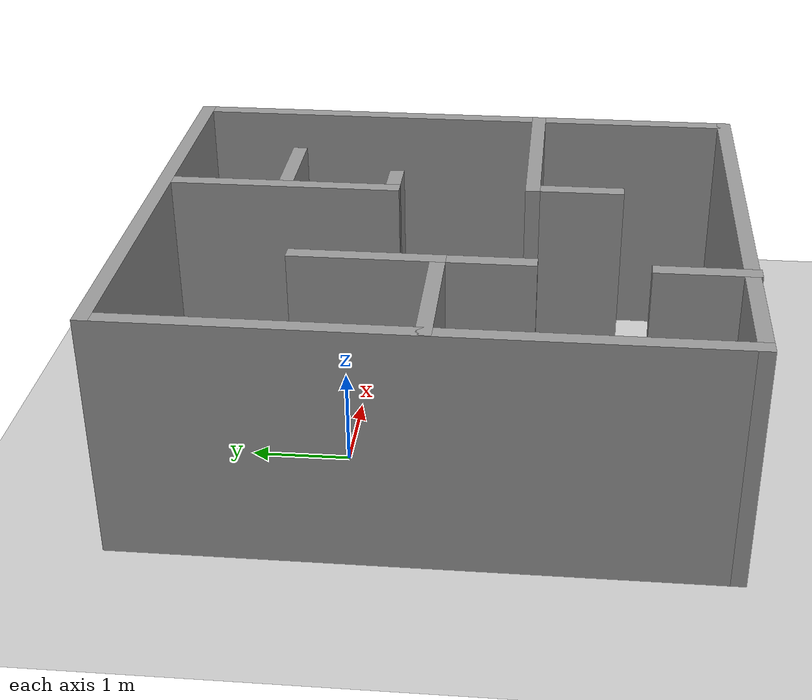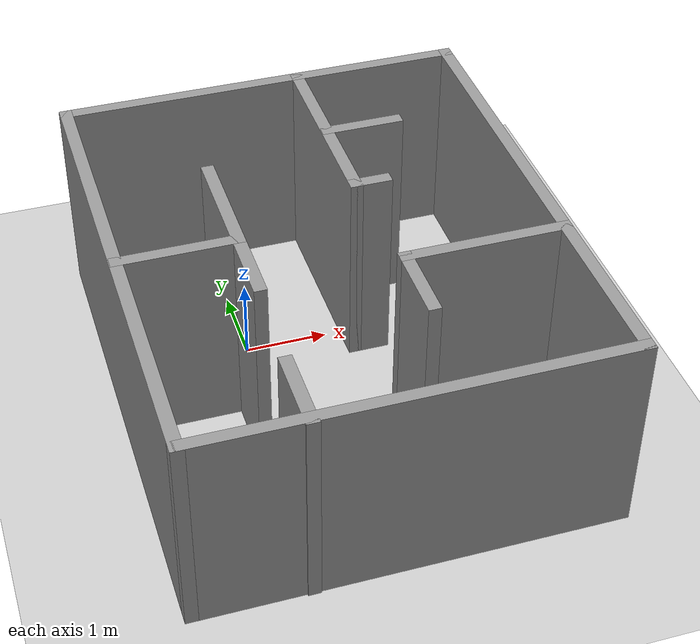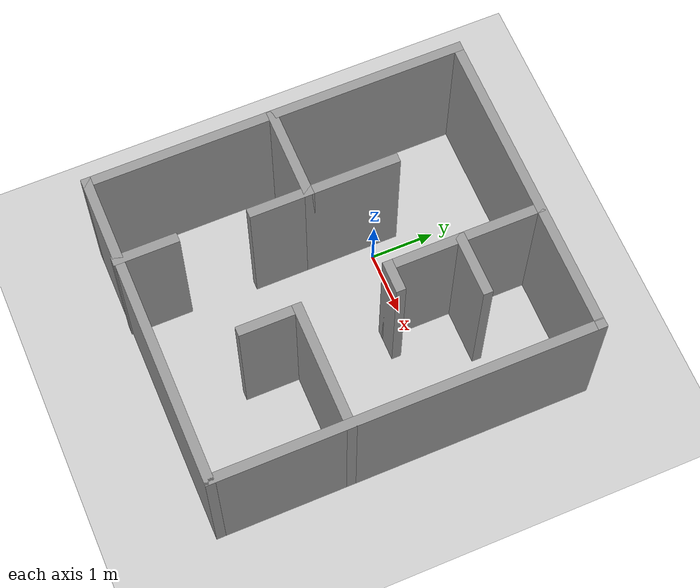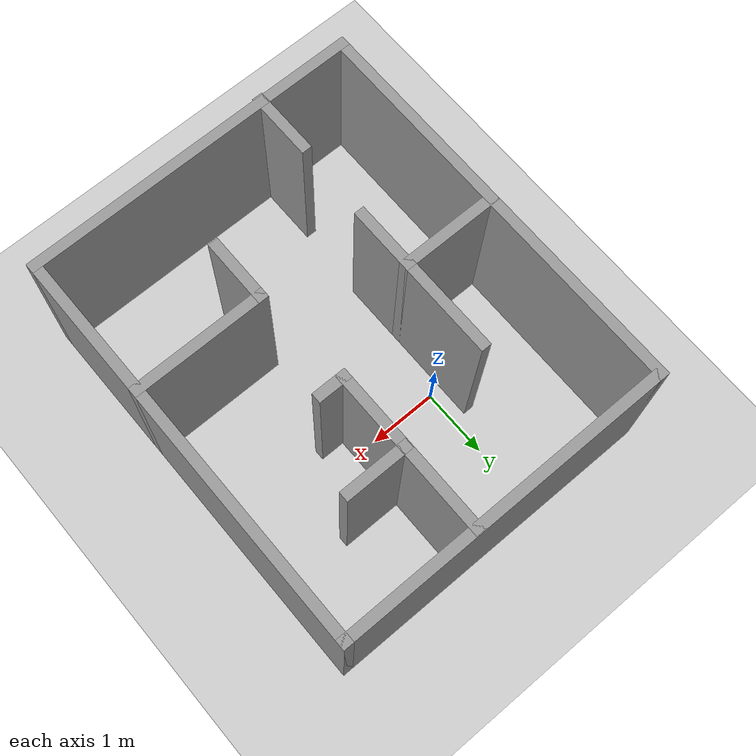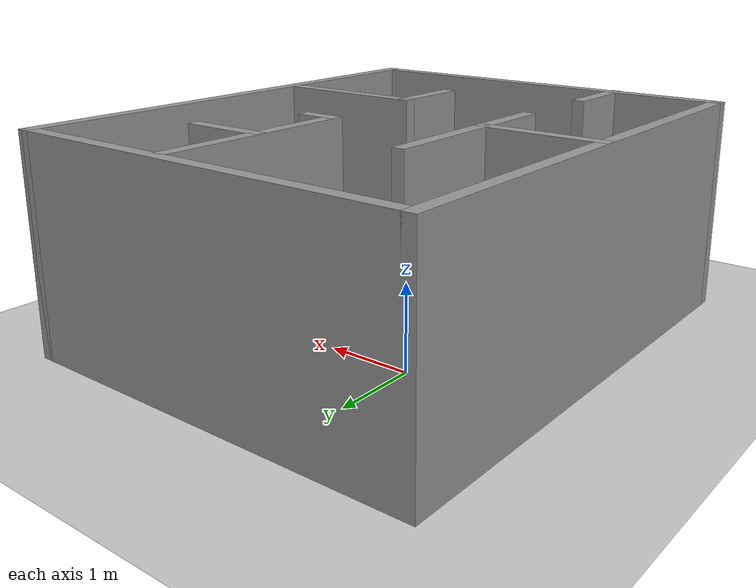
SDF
<sdf version="1.6">
 <world name="default">
  <light name="sun" type="directional">
   <pose>0 0 10 0 -0 0</pose>
   <diffuse>0.8 0.8 0.8 1</diffuse>
   <specular>0.2 0.2 0.2 1</specular>
   <attenuation>
    <range>1000</range>
    <constant>0.9</constant>
    <linear>0.01</linear>
    <quadratic>0.001</quadratic>
   </attenuation>
   <direction>-0.5 0.1 -0.9</direction>
  </light>
  <model name="ground_plane">
   <static>1</static>
   <link name="link">
    <collision name="collision">
     <geometry><plane><normal>0 0 1</normal><size>100 100</size></plane></geometry>
     <surface><friction><ode><mu>100</mu><mu2>50</mu2></ode></friction></surface>
    </collision>
    <visual name="visual">
     <cast_shadows>0</cast_shadows>
     <geometry><plane><normal>0 0 1</normal><size>100 100</size></plane></geometry>
     <material>
      <script><uri>file://media/materials/scripts/gazebo.material</uri><name>Gazebo/Grey</name></script>
     </material>
    </visual>
   </link>
  </model>
  <gravity>0 0 -9.8</gravity>
  <magnetic_field>6e-06 2.3e-05 -4.2e-05</magnetic_field>
  <atmosphere type="adiabatic"/>
  <physics name="default_physics" default="0" type="ode">
   <max_step_size>0.001</max_step_size>
   <real_time_factor>1</real_time_factor>
   <real_time_update_rate>1000</real_time_update_rate>
  </physics>
  <scene><ambient>0.4 0.4 0.4 1</ambient><background>0.7 0.7 0.7 1</background><shadows>1</shadows></scene>
  <spherical_coordinates>
   <surface_model>EARTH_WGS84</surface_model>
   <latitude_deg>0</latitude_deg>
   <longitude_deg>0</longitude_deg>
   <elevation>0</elevation>
   <heading_deg>0</heading_deg>
  </spherical_coordinates>
  <model name="building7_0">
   <pose>0.79741 -0.912669 0 0 -0 0</pose>
   <link name="Wall_0">
    <collision name="Wall_0_Collision">
     <geometry><box><size>5 0.15 2.5</size></box></geometry>
     <pose>0 0 1.25 0 -0 0</pose>
    </collision>
    <visual name="Wall_0_Visual">
     <pose>0 0 1.25 0 -0 0</pose>
     <geometry><box><size>5 0.15 2.5</size></box></geometry>
     <material>
      <script><uri>file://media/materials/scripts/gazebo.material</uri><name>Gazebo/Grey</name></script>
      <ambient>1 1 1 1</ambient>
     </material>
     <meta><layer>0</layer></meta>
    </visual>
    <pose>0 2.935 0 0 -0 0</pose>
   </link>
   <link name="Wall_1">
    <collision name="Wall_1_Collision">
     <geometry><box><size>6 0.15 2.5</size></box></geometry>
     <pose>0 0 1.25 0 -0 0</pose>
    </collision>
    <visual name="Wall_1_Visual">
     <pose>0 0 1.25 0 -0 0</pose>
     <geometry><box><size>6 0.15 2.5</size></box></geometry>
     <material>
      <script><uri>file://media/materials/scripts/gazebo.material</uri><name>Gazebo/Grey</name></script>
      <ambient>1 1 1 1</ambient>
     </material>
     <meta><layer>0</layer></meta>
    </visual>
    <pose>2.425 0.01 0 0 0 -1.5708</pose>
   </link>
   <link name="Wall_11">
    <collision name="Wall_11_Collision">
     <geometry><box><size>1 0.15 2.5</size></box></geometry>
     <pose>0 0 1.25 0 -0 0</pose>
    </collision>
    <visual name="Wall_11_Visual">
     <pose>0 0 1.25 0 -0 0</pose>
     <geometry><box><size>1 0.15 2.5</size></box></geometry>
     <material>
      <script><uri>file://media/materials/scripts/gazebo.material</uri><name>Gazebo/Grey</name></script>
      <ambient>1 1 1 1</ambient>
     </material>
     <meta><layer>0</layer></meta>
    </visual>
    <pose>-1.065 -0.46 0 0 0 -1.5708</pose>
   </link>
   <link name="Wall_13">
    <collision name="Wall_13_Collision">
     <geometry><box><size>1 0.15 2.5</size></box></geometry>
     <pose>0 0 1.25 0 -0 0</pose>
    </collision>
    <visual name="Wall_13_Visual">
     <pose>0 0 1.25 0 -0 0</pose>
     <geometry><box><size>1 0.15 2.5</size></box></geometry>
     <material>
      <script><uri>file://media/materials/scripts/gazebo.material</uri><name>Gazebo/Grey</name></script>
      <ambient>1 1 1 1</ambient>
     </material>
     <meta><layer>0</layer></meta>
    </visual>
    <pose>-1.105 -2.51 0 0 -0 1.5708</pose>
   </link>
   <link name="Wall_15">
    <collision name="Wall_15_Collision">
     <geometry><box><size>2.5 0.15 2.5</size></box></geometry>
     <pose>0 0 1.25 0 -0 0</pose>
    </collision>
    <visual name="Wall_15_Visual">
     <pose>0 0 1.25 0 -0 0</pose>
     <geometry><box><size>2.5 0.15 2.5</size></box></geometry>
     <material>
      <script><uri>file://media/materials/scripts/gazebo.material</uri><name>Gazebo/Grey</name></script>
      <ambient>1 1 1 1</ambient>
     </material>
     <meta><layer>0</layer></meta>
    </visual>
    <pose>0.465 1.75 0 0 0 -1.5708</pose>
   </link>
   <link name="Wall_16">
    <collision name="Wall_16_Collision">
     <geometry><box><size>0.5 0.15 2.5</size></box></geometry>
     <pose>0 0 1.25 0 -0 0</pose>
    </collision>
    <visual name="Wall_16_Visual">
     <pose>0 0 1.25 0 -0 0</pose>
     <geometry><box><size>0.5 0.15 2.5</size></box></geometry>
     <material>
      <script><uri>file://media/materials/scripts/gazebo.material</uri><name>Gazebo/Grey</name></script>
      <ambient>1 1 1 1</ambient>
     </material>
     <meta><layer>0</layer></meta>
    </visual>
    <pose>0.640001 0.575 0 0 -0 0</pose>
   </link>
   <link name="Wall_19">
    <collision name="Wall_19_Collision">
     <geometry><box><size>1 0.15 2.5</size></box></geometry>
     <pose>0 0 1.25 0 -0 0</pose>
    </collision>
    <visual name="Wall_19_Visual">
     <pose>0 0 1.25 0 -0 0</pose>
     <geometry><box><size>1 0.15 2.5</size></box></geometry>
     <material>
      <script><uri>file://media/materials/scripts/gazebo.material</uri><name>Gazebo/Grey</name></script>
      <ambient>1 1 1 1</ambient>
     </material>
     <meta><layer>0</layer></meta>
    </visual>
    <pose>0.9 1.685 0 0 -0 0</pose>
   </link>
   <link name="Wall_2">
    <collision name="Wall_2_Collision">
     <geometry><box><size>5 0.15 2.5</size></box></geometry>
     <pose>0 0 1.25 0 -0 0</pose>
    </collision>
    <visual name="Wall_2_Visual">
     <pose>0 0 1.25 0 -0 0</pose>
     <geometry><box><size>5 0.15 2.5</size></box></geometry>
     <material>
      <script><uri>file://media/materials/scripts/gazebo.material</uri><name>Gazebo/Grey</name></script>
      <ambient>1 1 1 1</ambient>
     </material>
     <meta><layer>0</layer></meta>
    </visual>
    <pose>0 -2.915 0 0 -0 3.14159</pose>
   </link>
   <link name="Wall_21">
    <collision name="Wall_21_Collision">
     <geometry><box><size>2 0.15 2.5</size></box></geometry>
     <pose>0 0 1.25 0 -0 0</pose>
    </collision>
    <visual name="Wall_21_Visual">
     <pose>0 0 1.25 0 -0 0</pose>
     <geometry><box><size>2 0.15 2.5</size></box></geometry>
     <material>
      <script><uri>file://media/materials/scripts/gazebo.material</uri><name>Gazebo/Grey</name></script>
      <ambient>1 1 1 1</ambient>
     </material>
     <meta><layer>0</layer></meta>
    </visual>
    <pose>1.5 -0.855 0 0 -0 3.14159</pose>
   </link>
   <link name="Wall_23">
    <collision name="Wall_23_Collision">
     <geometry><box><size>1 0.15 2.5</size></box></geometry>
     <pose>0 0 1.25 0 -0 0</pose>
    </collision>
    <visual name="Wall_23_Visual">
     <pose>0 0 1.25 0 -0 0</pose>
     <geometry><box><size>1 0.15 2.5</size></box></geometry>
     <material>
      <script><uri>file://media/materials/scripts/gazebo.material</uri><name>Gazebo/Grey</name></script>
      <ambient>1 1 1 1</ambient>
     </material>
     <meta><layer>0</layer></meta>
    </visual>
    <pose>0.575 -1.28 0 0 0 -1.5708</pose>
   </link>
   <link name="Wall_3">
    <collision name="Wall_3_Collision">
     <geometry><box><size>6 0.15 2.5</size></box></geometry>
     <pose>0 0 1.25 0 -0 0</pose>
    </collision>
    <visual name="Wall_3_Visual">
     <pose>0 0 1.25 0 -0 0</pose>
     <geometry><box><size>6 0.15 2.5</size></box></geometry>
     <material>
      <script><uri>file://media/materials/scripts/gazebo.material</uri><name>Gazebo/Grey</name></script>
      <ambient>1 1 1 1</ambient>
     </material>
     <meta><layer>0</layer></meta>
    </visual>
    <pose>-2.425 0.01 0 0 -0 1.5708</pose>
   </link>
   <link name="Wall_7">
    <collision name="Wall_7_Collision">
     <geometry><box><size>1.5 0.15 2.5</size></box></geometry>
     <pose>0 0 1.25 0 -0 0</pose>
    </collision>
    <visual name="Wall_7_Visual">
     <pose>0 0 1.25 0 -0 0</pose>
     <geometry><box><size>1.5 0.15 2.5</size></box></geometry>
     <material>
      <script><uri>file://media/materials/scripts/gazebo.material</uri><name>Gazebo/Grey</name></script>
      <ambient>1 1 1 1</ambient>
     </material>
     <meta><layer>0</layer></meta>
    </visual>
    <pose>-1.74 -0.035 0 0 -0 0</pose>
   </link>
   <link name="Wall_9">
    <collision name="Wall_9_Collision">
     <geometry><box><size>1.5 0.15 2.5</size></box></geometry>
     <pose>0 0 1.25 0 -0 0</pose>
    </collision>
    <visual name="Wall_9_Visual">
     <pose>0 0 1.25 0 -0 0</pose>
     <geometry><box><size>1.5 0.15 2.5</size></box></geometry>
     <material>
      <script><uri>file://media/materials/scripts/gazebo.material</uri><name>Gazebo/Grey</name></script>
      <ambient>1 1 1 1</ambient>
     </material>
     <meta><layer>0</layer></meta>
    </visual>
    <pose>-1.065 0.64 0 0 -0 1.5708</pose>
   </link>
   <static>1</static>
  </model>
 </world>
</sdf>
